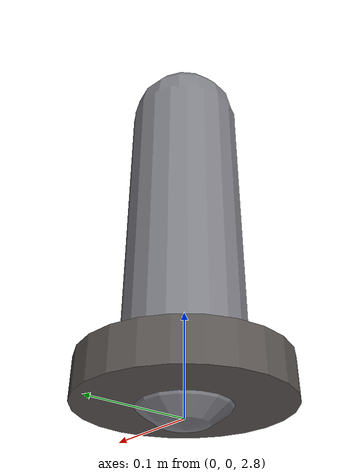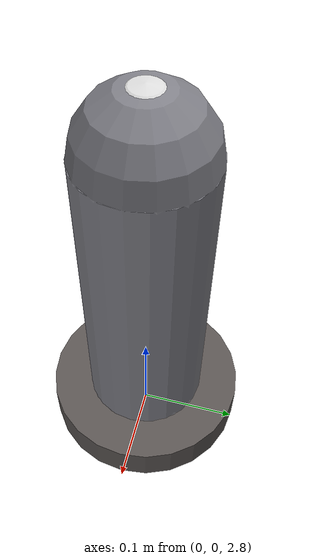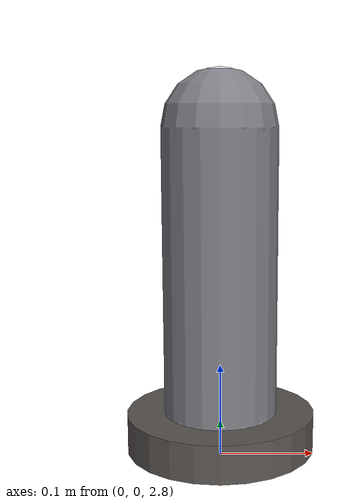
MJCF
<mujoco model="soft-landing">
  <compiler angle="radian"/>
  <option gravity="0 0 -9.81" timestep="0.002" integrator="RK4">
    <flag energy="enable" contact="disable"/>
  </option>
  <default>
    <geom contype="0" conaffinity="0"/>
  </default>
  <worldbody>
    <body name="lander" pos="0 0 3">
      <joint name="slide" type="slide" axis="0 0 1" damping="0"/>
      <inertial pos="0 0 0" mass="1.0" diaginertia="0.01 0.01 0.01"/>
      <geom name="body" type="capsule" size="0.06"
            fromto="0 0 -0.15  0 0 0.15" rgba="0.50 0.50 0.53 1"/>
      <geom name="base" type="cylinder" size="0.10 0.02"
            pos="0 0 -0.17" rgba="0.35 0.33 0.32 1"/>
      <geom name="top" type="sphere" size="0.04"
            pos="0 0 0.17" rgba="0.85 0.85 0.85 1"/>
    </body>
  </worldbody>
  <actuator>
    <motor name="thrust" joint="slide" gear="1"/>
  </actuator>
</mujoco>
